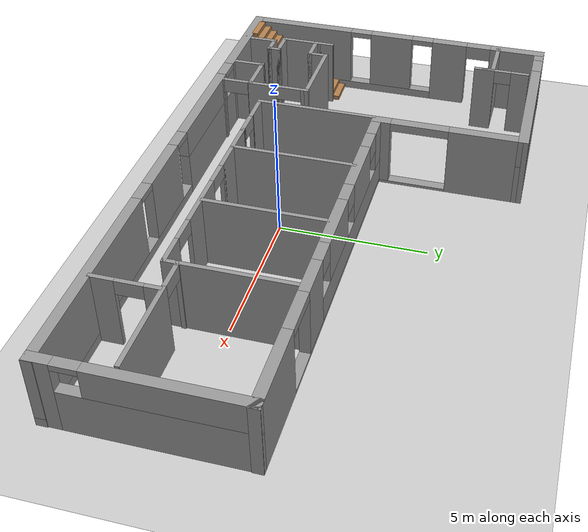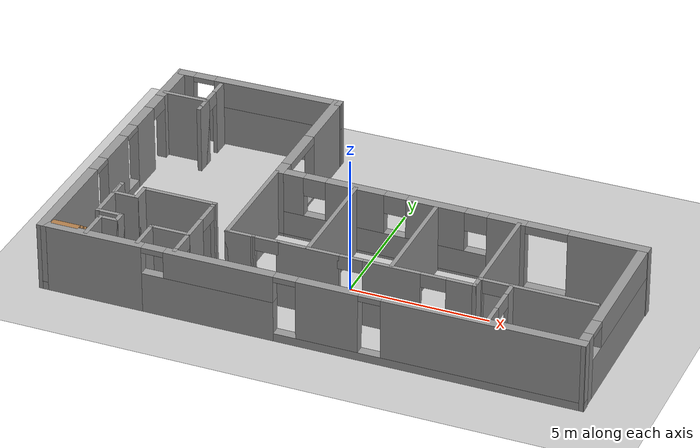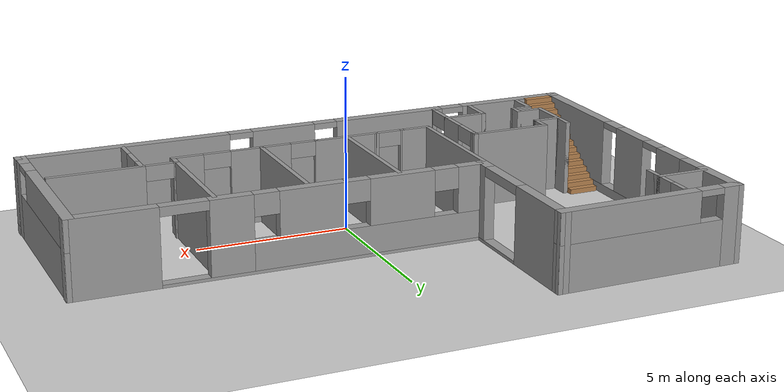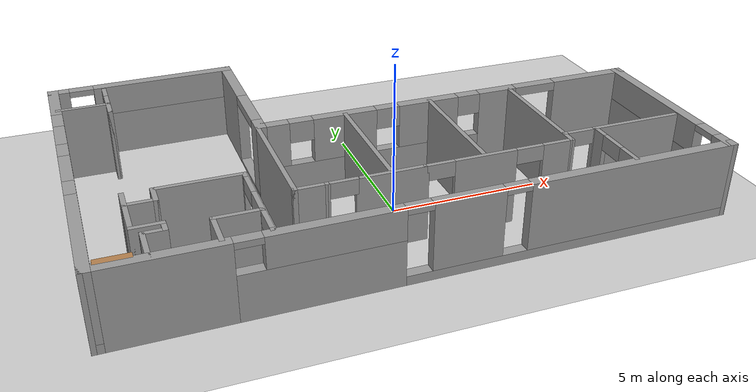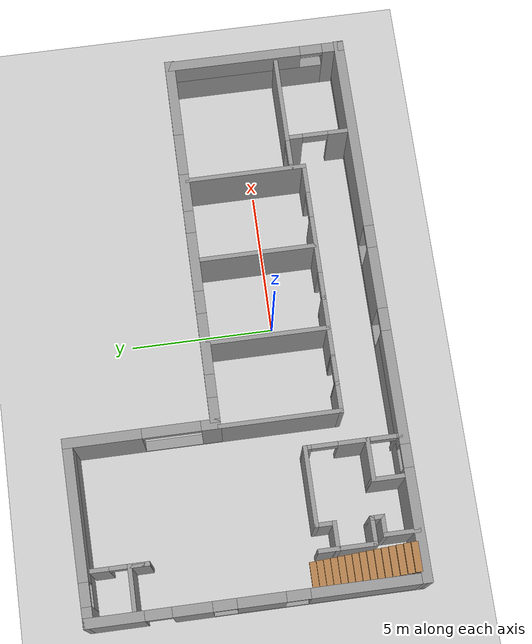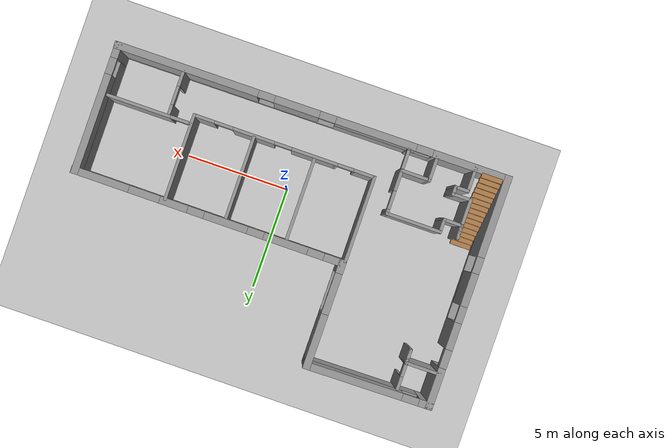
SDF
<sdf version="1.6">
 <world name="default">
  <model name="ground_plane">
   <static>1</static>
   <link name="link">
    <collision name="collision">
     <geometry><plane><normal>0 0 1</normal><size>100 100</size></plane></geometry>
     <surface><friction><ode><mu>100</mu><mu2>50</mu2></ode></friction></surface>
    </collision>
    <visual name="visual">
     <cast_shadows>0</cast_shadows>
     <geometry><plane><normal>0 0 1</normal><size>100 100</size></plane></geometry>
     <material>
      <script><uri>file://media/materials/scripts/gazebo.material</uri><name>Gazebo/Grey</name></script>
     </material>
    </visual>
   </link>
  </model>
  <model name="home">
   <pose>-0.006982 1.84803 0 0 -0 0</pose>
   <link name="Stairs_0">
    <visual name="Stairs_0_Visual_0">
     <pose>-8.81629 -2.10282 0.083333 0 -0 0</pose>
     <geometry><box><size>1 0.233333 0.166667</size></box></geometry>
     <material>
      <script><uri>file://media/materials/scripts/gazebo.material</uri><name>Gazebo/Wood</name></script>
      <ambient>1 1 1 1</ambient>
     </material>
     <meta><layer>0</layer></meta>
    </visual>
    <collision name="Stairs_0_Collision_0">
     <geometry><box><size>1 0.233333 0.166667</size></box></geometry>
     <pose>-8.81629 -2.10282 0.083333 0 -0 0</pose>
    </collision>
    <visual name="Stairs_0_Visual_1">
     <pose>-8.81629 -2.33615 0.25 0 -0 0</pose>
     <geometry><box><size>1 0.233333 0.166667</size></box></geometry>
     <material>
      <script><uri>file://media/materials/scripts/gazebo.material</uri><name>Gazebo/Wood</name></script>
      <ambient>1 1 1 1</ambient>
     </material>
     <meta><layer>0</layer></meta>
    </visual>
    <collision name="Stairs_0_Collision_1">
     <geometry><box><size>1 0.233333 0.166667</size></box></geometry>
     <pose>-8.81629 -2.33615 0.25 0 -0 0</pose>
    </collision>
    <visual name="Stairs_0_Visual_2">
     <pose>-8.81629 -2.56948 0.416667 0 -0 0</pose>
     <geometry><box><size>1 0.233333 0.166667</size></box></geometry>
     <material>
      <script><uri>file://media/materials/scripts/gazebo.material</uri><name>Gazebo/Wood</name></script>
      <ambient>1 1 1 1</ambient>
     </material>
     <meta><layer>0</layer></meta>
    </visual>
    <collision name="Stairs_0_Collision_2">
     <geometry><box><size>1 0.233333 0.166667</size></box></geometry>
     <pose>-8.81629 -2.56948 0.416667 0 -0 0</pose>
    </collision>
    <visual name="Stairs_0_Visual_3">
     <pose>-8.81629 -2.80282 0.583333 0 -0 0</pose>
     <geometry><box><size>1 0.233333 0.166667</size></box></geometry>
     <material>
      <script><uri>file://media/materials/scripts/gazebo.material</uri><name>Gazebo/Wood</name></script>
      <ambient>1 1 1 1</ambient>
     </material>
     <meta><layer>0</layer></meta>
    </visual>
    <collision name="Stairs_0_Collision_3">
     <geometry><box><size>1 0.233333 0.166667</size></box></geometry>
     <pose>-8.81629 -2.80282 0.583333 0 -0 0</pose>
    </collision>
    <visual name="Stairs_0_Visual_4">
     <pose>-8.81629 -3.03615 0.75 0 -0 0</pose>
     <geometry><box><size>1 0.233333 0.166667</size></box></geometry>
     <material>
      <script><uri>file://media/materials/scripts/gazebo.material</uri><name>Gazebo/Wood</name></script>
      <ambient>1 1 1 1</ambient>
     </material>
     <meta><layer>0</layer></meta>
    </visual>
    <collision name="Stairs_0_Collision_4">
     <geometry><box><size>1 0.233333 0.166667</size></box></geometry>
     <pose>-8.81629 -3.03615 0.75 0 -0 0</pose>
    </collision>
    <visual name="Stairs_0_Visual_5">
     <pose>-8.81629 -3.26948 0.916667 0 -0 0</pose>
     <geometry><box><size>1 0.233333 0.166667</size></box></geometry>
     <material>
      <script><uri>file://media/materials/scripts/gazebo.material</uri><name>Gazebo/Wood</name></script>
      <ambient>1 1 1 1</ambient>
     </material>
     <meta><layer>0</layer></meta>
    </visual>
    <collision name="Stairs_0_Collision_5">
     <geometry><box><size>1 0.233333 0.166667</size></box></geometry>
     <pose>-8.81629 -3.26948 0.916667 0 -0 0</pose>
    </collision>
    <visual name="Stairs_0_Visual_6">
     <pose>-8.81629 -3.50282 1.08333 0 -0 0</pose>
     <geometry><box><size>1 0.233333 0.166667</size></box></geometry>
     <material>
      <script><uri>file://media/materials/scripts/gazebo.material</uri><name>Gazebo/Wood</name></script>
      <ambient>1 1 1 1</ambient>
     </material>
     <meta><layer>0</layer></meta>
    </visual>
    <collision name="Stairs_0_Collision_6">
     <geometry><box><size>1 0.233333 0.166667</size></box></geometry>
     <pose>-8.81629 -3.50282 1.08333 0 -0 0</pose>
    </collision>
    <visual name="Stairs_0_Visual_7">
     <pose>-8.81629 -3.73615 1.25 0 -0 0</pose>
     <geometry><box><size>1 0.233333 0.166667</size></box></geometry>
     <material>
      <script><uri>file://media/materials/scripts/gazebo.material</uri><name>Gazebo/Wood</name></script>
      <ambient>1 1 1 1</ambient>
     </material>
     <meta><layer>0</layer></meta>
    </visual>
    <collision name="Stairs_0_Collision_7">
     <geometry><box><size>1 0.233333 0.166667</size></box></geometry>
     <pose>-8.81629 -3.73615 1.25 0 -0 0</pose>
    </collision>
    <visual name="Stairs_0_Visual_8">
     <pose>-8.81629 -3.96949 1.41667 0 -0 0</pose>
     <geometry><box><size>1 0.233333 0.166667</size></box></geometry>
     <material>
      <script><uri>file://media/materials/scripts/gazebo.material</uri><name>Gazebo/Wood</name></script>
      <ambient>1 1 1 1</ambient>
     </material>
     <meta><layer>0</layer></meta>
    </visual>
    <collision name="Stairs_0_Collision_8">
     <geometry><box><size>1 0.233333 0.166667</size></box></geometry>
     <pose>-8.81629 -3.96949 1.41667 0 -0 0</pose>
    </collision>
    <visual name="Stairs_0_Visual_9">
     <pose>-8.81629 -4.20282 1.58333 0 -0 0</pose>
     <geometry><box><size>1 0.233333 0.166667</size></box></geometry>
     <material>
      <script><uri>file://media/materials/scripts/gazebo.material</uri><name>Gazebo/Wood</name></script>
      <ambient>1 1 1 1</ambient>
     </material>
     <meta><layer>0</layer></meta>
    </visual>
    <collision name="Stairs_0_Collision_9">
     <geometry><box><size>1 0.233333 0.166667</size></box></geometry>
     <pose>-8.81629 -4.20282 1.58333 0 -0 0</pose>
    </collision>
    <visual name="Stairs_0_Visual_10">
     <pose>-8.81629 -4.43615 1.75 0 -0 0</pose>
     <geometry><box><size>1 0.233333 0.166667</size></box></geometry>
     <material>
      <script><uri>file://media/materials/scripts/gazebo.material</uri><name>Gazebo/Wood</name></script>
      <ambient>1 1 1 1</ambient>
     </material>
     <meta><layer>0</layer></meta>
    </visual>
    <collision name="Stairs_0_Collision_10">
     <geometry><box><size>1 0.233333 0.166667</size></box></geometry>
     <pose>-8.81629 -4.43615 1.75 0 -0 0</pose>
    </collision>
    <visual name="Stairs_0_Visual_11">
     <pose>-8.81629 -4.66948 1.91667 0 -0 0</pose>
     <geometry><box><size>1 0.233333 0.166667</size></box></geometry>
     <material>
      <script><uri>file://media/materials/scripts/gazebo.material</uri><name>Gazebo/Wood</name></script>
      <ambient>1 1 1 1</ambient>
     </material>
     <meta><layer>0</layer></meta>
    </visual>
    <collision name="Stairs_0_Collision_11">
     <geometry><box><size>1 0.233333 0.166667</size></box></geometry>
     <pose>-8.81629 -4.66948 1.91667 0 -0 0</pose>
    </collision>
    <visual name="Stairs_0_Visual_12">
     <pose>-8.81629 -4.90282 2.08333 0 -0 0</pose>
     <geometry><box><size>1 0.233333 0.166667</size></box></geometry>
     <material>
      <script><uri>file://media/materials/scripts/gazebo.material</uri><name>Gazebo/Wood</name></script>
      <ambient>1 1 1 1</ambient>
     </material>
     <meta><layer>0</layer></meta>
    </visual>
    <collision name="Stairs_0_Collision_12">
     <geometry><box><size>1 0.233333 0.166667</size></box></geometry>
     <pose>-8.81629 -4.90282 2.08333 0 -0 0</pose>
    </collision>
    <visual name="Stairs_0_Visual_13">
     <pose>-8.81629 -5.13615 2.25 0 -0 0</pose>
     <geometry><box><size>1 0.233333 0.166667</size></box></geometry>
     <material>
      <script><uri>file://media/materials/scripts/gazebo.material</uri><name>Gazebo/Wood</name></script>
      <ambient>1 1 1 1</ambient>
     </material>
     <meta><layer>0</layer></meta>
    </visual>
    <collision name="Stairs_0_Collision_13">
     <geometry><box><size>1 0.233333 0.166667</size></box></geometry>
     <pose>-8.81629 -5.13615 2.25 0 -0 0</pose>
    </collision>
    <visual name="Stairs_0_Visual_14">
     <pose>-8.81629 -5.36949 2.41667 0 -0 0</pose>
     <geometry><box><size>1 0.233333 0.166667</size></box></geometry>
     <material>
      <script><uri>file://media/materials/scripts/gazebo.material</uri><name>Gazebo/Wood</name></script>
      <ambient>1 1 1 1</ambient>
     </material>
     <meta><layer>0</layer></meta>
    </visual>
    <collision name="Stairs_0_Collision_14">
     <geometry><box><size>1 0.233333 0.166667</size></box></geometry>
     <pose>-8.81629 -5.36949 2.41667 0 -0 0</pose>
    </collision>
   </link>
   <link name="Wall_0">
    <pose>-9.53364 -0.044972 0 0 0 -1.5708</pose>
    <visual name="Wall_0_Visual_0">
     <pose>-4.71962 0 1.25 0 -0 0</pose>
     <geometry><box><size>2.01097 0.35 2.5</size></box></geometry>
     <material>
      <script><uri>file://media/materials/scripts/gazebo.material</uri><name>Gazebo/Grey</name></script>
      <ambient>0.533333 0.541176 0.521569 1</ambient>
     </material>
     <meta><layer>0</layer></meta>
    </visual>
    <collision name="Wall_0_Collision_0">
     <geometry><box><size>2.01097 0.35 2.5</size></box></geometry>
     <pose>-4.71962 0 1.25 0 -0 0</pose>
    </collision>
    <visual name="Wall_0_Visual_1">
     <pose>-2.15318 0 1.25 0 -0 0</pose>
     <geometry><box><size>1.32191 0.35 2.5</size></box></geometry>
     <material>
      <script><uri>file://media/materials/scripts/gazebo.material</uri><name>Gazebo/Grey</name></script>
      <ambient>0.533333 0.541176 0.521569 1</ambient>
     </material>
     <meta><layer>0</layer></meta>
    </visual>
    <collision name="Wall_0_Collision_1">
     <geometry><box><size>1.32191 0.35 2.5</size></box></geometry>
     <pose>-2.15318 0 1.25 0 -0 0</pose>
    </collision>
    <visual name="Wall_0_Visual_2">
     <pose>2.11644 0 0.15 0 -0 0</pose>
     <geometry><box><size>7.21733 0.35 0.3</size></box></geometry>
     <material>
      <script><uri>file://media/materials/scripts/gazebo.material</uri><name>Gazebo/Grey</name></script>
      <ambient>0.533333 0.541176 0.521569 1</ambient>
     </material>
     <meta><layer>0</layer></meta>
    </visual>
    <collision name="Wall_0_Collision_2">
     <geometry><box><size>7.21733 0.35 0.3</size></box></geometry>
     <pose>2.11644 0 0.15 0 -0 0</pose>
    </collision>
    <visual name="Wall_0_Visual_3">
     <pose>0.116089 0 1.4 0 -0 0</pose>
     <geometry><box><size>1.61663 0.35 2.2</size></box></geometry>
     <material>
      <script><uri>file://media/materials/scripts/gazebo.material</uri><name>Gazebo/Grey</name></script>
      <ambient>0.533333 0.541176 0.521569 1</ambient>
     </material>
     <meta><layer>0</layer></meta>
    </visual>
    <collision name="Wall_0_Collision_3">
     <geometry><box><size>1.61663 0.35 2.2</size></box></geometry>
     <pose>0.116089 0 1.4 0 -0 0</pose>
    </collision>
    <visual name="Wall_0_Visual_4">
     <pose>3.72475 0 1.4 0 -0 0</pose>
     <geometry><box><size>4.0007 0.35 2.2</size></box></geometry>
     <material>
      <script><uri>file://media/materials/scripts/gazebo.material</uri><name>Gazebo/Grey</name></script>
      <ambient>0.533333 0.541176 0.521569 1</ambient>
     </material>
     <meta><layer>0</layer></meta>
    </visual>
    <collision name="Wall_0_Collision_4">
     <geometry><box><size>4.0007 0.35 2.2</size></box></geometry>
     <pose>3.72475 0 1.4 0 -0 0</pose>
    </collision>
    <visual name="Wall_0_Visual_5">
     <pose>-3.26413 0 2.25 0 -0 0</pose>
     <geometry><box><size>0.9 0.35 0.5</size></box></geometry>
     <material>
      <script><uri>file://media/materials/scripts/gazebo.material</uri><name>Gazebo/Grey</name></script>
      <ambient>0.533333 0.541176 0.521569 1</ambient>
     </material>
     <meta><layer>0</layer></meta>
    </visual>
    <collision name="Wall_0_Collision_5">
     <geometry><box><size>0.9 0.35 0.5</size></box></geometry>
     <pose>-3.26413 0 2.25 0 -0 0</pose>
    </collision>
    <visual name="Wall_0_Visual_6">
     <pose>-1.09223 0 2.4 0 -0 0</pose>
     <geometry><box><size>0.8 0.35 0.2</size></box></geometry>
     <material>
      <script><uri>file://media/materials/scripts/gazebo.material</uri><name>Gazebo/Grey</name></script>
      <ambient>0.533333 0.541176 0.521569 1</ambient>
     </material>
     <meta><layer>0</layer></meta>
    </visual>
    <collision name="Wall_0_Collision_6">
     <geometry><box><size>0.8 0.35 0.2</size></box></geometry>
     <pose>-1.09223 0 2.4 0 -0 0</pose>
    </collision>
    <visual name="Wall_0_Visual_7">
     <pose>1.3244 0 2.4 0 -0 0</pose>
     <geometry><box><size>0.8 0.35 0.2</size></box></geometry>
     <material>
      <script><uri>file://media/materials/scripts/gazebo.material</uri><name>Gazebo/Grey</name></script>
      <ambient>0.533333 0.541176 0.521569 1</ambient>
     </material>
     <meta><layer>0</layer></meta>
    </visual>
    <collision name="Wall_0_Collision_7">
     <geometry><box><size>0.8 0.35 0.2</size></box></geometry>
     <pose>1.3244 0 2.4 0 -0 0</pose>
    </collision>
   </link>
   <link name="Wall_1">
    <pose>0.000972 -5.56103 0 0 -0 0.00356</pose>
    <visual name="Wall_1_Visual_0">
     <pose>-7.79255 0 1.25 0 -0 0</pose>
     <geometry><box><size>3.83426 0.35 2.5</size></box></geometry>
     <material>
      <script><uri>file://media/materials/scripts/gazebo.material</uri><name>Gazebo/Grey</name></script>
      <ambient>0.533333 0.541176 0.521569 1</ambient>
     </material>
     <meta><layer>0</layer></meta>
    </visual>
    <collision name="Wall_1_Collision_0">
     <geometry><box><size>3.83426 0.35 2.5</size></box></geometry>
     <pose>-7.79255 0 1.25 0 -0 0</pose>
    </collision>
    <visual name="Wall_1_Visual_1">
     <pose>-3.50442 0 0.75 0 -0 0</pose>
     <geometry><box><size>4.742 0.35 1.5</size></box></geometry>
     <material>
      <script><uri>file://media/materials/scripts/gazebo.material</uri><name>Gazebo/Grey</name></script>
      <ambient>0.533333 0.541176 0.521569 1</ambient>
     </material>
     <meta><layer>0</layer></meta>
    </visual>
    <collision name="Wall_1_Collision_1">
     <geometry><box><size>4.742 0.35 1.5</size></box></geometry>
     <pose>-3.50442 0 0.75 0 -0 0</pose>
    </collision>
    <visual name="Wall_1_Visual_2">
     <pose>4.28813 0 0.15 0 -0 0</pose>
     <geometry><box><size>10.8431 0.35 0.3</size></box></geometry>
     <material>
      <script><uri>file://media/materials/scripts/gazebo.material</uri><name>Gazebo/Grey</name></script>
      <ambient>0.533333 0.541176 0.521569 1</ambient>
     </material>
     <meta><layer>0</layer></meta>
    </visual>
    <collision name="Wall_1_Collision_2">
     <geometry><box><size>10.8431 0.35 0.3</size></box></geometry>
     <pose>4.28813 0 0.15 0 -0 0</pose>
    </collision>
    <visual name="Wall_1_Visual_3">
     <pose>0.765465 0 1.4 0 -0 0</pose>
     <geometry><box><size>2.19777 0.35 2.2</size></box></geometry>
     <material>
      <script><uri>file://media/materials/scripts/gazebo.material</uri><name>Gazebo/Grey</name></script>
      <ambient>0.533333 0.541176 0.521569 1</ambient>
     </material>
     <meta><layer>0</layer></meta>
    </visual>
    <collision name="Wall_1_Collision_3">
     <geometry><box><size>2.19777 0.35 2.2</size></box></geometry>
     <pose>0.765465 0 1.4 0 -0 0</pose>
    </collision>
    <visual name="Wall_1_Visual_4">
     <pose>6.18701 0 1.4 0 -0 0</pose>
     <geometry><box><size>7.04532 0.35 2.2</size></box></geometry>
     <material>
      <script><uri>file://media/materials/scripts/gazebo.material</uri><name>Gazebo/Grey</name></script>
      <ambient>0.533333 0.541176 0.521569 1</ambient>
     </material>
     <meta><layer>0</layer></meta>
    </visual>
    <collision name="Wall_1_Collision_4">
     <geometry><box><size>7.04532 0.35 2.2</size></box></geometry>
     <pose>6.18701 0 1.4 0 -0 0</pose>
    </collision>
    <visual name="Wall_1_Visual_5">
     <pose>-3.10442 0 2 0 -0 0</pose>
     <geometry><box><size>3.942 0.35 1</size></box></geometry>
     <material>
      <script><uri>file://media/materials/scripts/gazebo.material</uri><name>Gazebo/Grey</name></script>
      <ambient>0.533333 0.541176 0.521569 1</ambient>
     </material>
     <meta><layer>0</layer></meta>
    </visual>
    <collision name="Wall_1_Collision_5">
     <geometry><box><size>3.942 0.35 1</size></box></geometry>
     <pose>-3.10442 0 2 0 -0 0</pose>
    </collision>
    <visual name="Wall_1_Visual_6">
     <pose>-5.47542 0 2.4 0 -0 0</pose>
     <geometry><box><size>0.8 0.35 0.2</size></box></geometry>
     <material>
      <script><uri>file://media/materials/scripts/gazebo.material</uri><name>Gazebo/Grey</name></script>
      <ambient>0.533333 0.541176 0.521569 1</ambient>
     </material>
     <meta><layer>0</layer></meta>
    </visual>
    <collision name="Wall_1_Collision_6">
     <geometry><box><size>0.8 0.35 0.2</size></box></geometry>
     <pose>-5.47542 0 2.4 0 -0 0</pose>
    </collision>
    <visual name="Wall_1_Visual_7">
     <pose>2.26435 0 2.4 0 -0 0</pose>
     <geometry><box><size>0.8 0.35 0.2</size></box></geometry>
     <material>
      <script><uri>file://media/materials/scripts/gazebo.material</uri><name>Gazebo/Grey</name></script>
      <ambient>0.533333 0.541176 0.521569 1</ambient>
     </material>
     <meta><layer>0</layer></meta>
    </visual>
    <collision name="Wall_1_Collision_7">
     <geometry><box><size>0.8 0.35 0.2</size></box></geometry>
     <pose>2.26435 0 2.4 0 -0 0</pose>
    </collision>
    <visual name="Wall_1_Visual_8">
     <pose>-0.733419 0 2.4 0 -0 0</pose>
     <geometry><box><size>0.8 0.35 0.2</size></box></geometry>
     <material>
      <script><uri>file://media/materials/scripts/gazebo.material</uri><name>Gazebo/Grey</name></script>
      <ambient>0.533333 0.541176 0.521569 1</ambient>
     </material>
     <meta><layer>0</layer></meta>
    </visual>
    <collision name="Wall_1_Collision_8">
     <geometry><box><size>0.8 0.35 0.2</size></box></geometry>
     <pose>-0.733419 0 2.4 0 -0 0</pose>
    </collision>
   </link>
   <link name="Wall_17">
    <pose>-3.57864 3.09303 0 0 0 -1.5708</pose>
    <visual name="Wall_17_Visual_0">
     <pose>-1.33506 0 1.25 0 -0 0</pose>
     <geometry><box><size>2.68042 0.35 2.5</size></box></geometry>
     <material>
      <script><uri>file://media/materials/scripts/gazebo.material</uri><name>Gazebo/Grey</name></script>
      <ambient>0.533333 0.541176 0.521569 1</ambient>
     </material>
     <meta><layer>0</layer></meta>
    </visual>
    <collision name="Wall_17_Collision_0">
     <geometry><box><size>2.68042 0.35 2.5</size></box></geometry>
     <pose>-1.33506 0 1.25 0 -0 0</pose>
    </collision>
    <visual name="Wall_17_Visual_1">
     <pose>1.34021 0 0.05 0 -0 0</pose>
     <geometry><box><size>2.67013 0.35 0.1</size></box></geometry>
     <material>
      <script><uri>file://media/materials/scripts/gazebo.material</uri><name>Gazebo/Grey</name></script>
      <ambient>0.533333 0.541176 0.521569 1</ambient>
     </material>
     <meta><layer>0</layer></meta>
    </visual>
    <collision name="Wall_17_Collision_1">
     <geometry><box><size>2.67013 0.35 0.1</size></box></geometry>
     <pose>1.34021 0 0.05 0 -0 0</pose>
    </collision>
    <visual name="Wall_17_Visual_2">
     <pose>2.34021 0 1.3 0 -0 0</pose>
     <geometry><box><size>0.670125 0.35 2.4</size></box></geometry>
     <material>
      <script><uri>file://media/materials/scripts/gazebo.material</uri><name>Gazebo/Grey</name></script>
      <ambient>0.533333 0.541176 0.521569 1</ambient>
     </material>
     <meta><layer>0</layer></meta>
    </visual>
    <collision name="Wall_17_Collision_2">
     <geometry><box><size>0.670125 0.35 2.4</size></box></geometry>
     <pose>2.34021 0 1.3 0 -0 0</pose>
    </collision>
    <visual name="Wall_17_Visual_3">
     <pose>1.00515 0 2.35 0 -0 0</pose>
     <geometry><box><size>2 0.35 0.3</size></box></geometry>
     <material>
      <script><uri>file://media/materials/scripts/gazebo.material</uri><name>Gazebo/Grey</name></script>
      <ambient>0.533333 0.541176 0.521569 1</ambient>
     </material>
     <meta><layer>0</layer></meta>
    </visual>
    <collision name="Wall_17_Collision_3">
     <geometry><box><size>2 0.35 0.3</size></box></geometry>
     <pose>1.00515 0 2.35 0 -0 0</pose>
    </collision>
   </link>
   <link name="Wall_2">
    <pose>9.51547 -2.47709 0 0 -0 1.5708</pose>
    <visual name="Wall_2_Visual_0">
     <pose>-2.83404 0 1.25 0 -0 0</pose>
     <geometry><box><size>0.781917 0.35 2.5</size></box></geometry>
     <material>
      <script><uri>file://media/materials/scripts/gazebo.material</uri><name>Gazebo/Grey</name></script>
      <ambient>0.533333 0.541176 0.521569 1</ambient>
     </material>
     <meta><layer>0</layer></meta>
    </visual>
    <collision name="Wall_2_Collision_0">
     <geometry><box><size>0.781917 0.35 2.5</size></box></geometry>
     <pose>-2.83404 0 1.25 0 -0 0</pose>
    </collision>
    <visual name="Wall_2_Visual_1">
     <pose>0.390958 0 0.75 0 -0 0</pose>
     <geometry><box><size>5.66808 0.35 1.5</size></box></geometry>
     <material>
      <script><uri>file://media/materials/scripts/gazebo.material</uri><name>Gazebo/Grey</name></script>
      <ambient>0.533333 0.541176 0.521569 1</ambient>
     </material>
     <meta><layer>0</layer></meta>
    </visual>
    <collision name="Wall_2_Collision_1">
     <geometry><box><size>5.66808 0.35 1.5</size></box></geometry>
     <pose>0.390958 0 0.75 0 -0 0</pose>
    </collision>
    <visual name="Wall_2_Visual_2">
     <pose>0.790958 0 2 0 -0 0</pose>
     <geometry><box><size>4.86808 0.35 1</size></box></geometry>
     <material>
      <script><uri>file://media/materials/scripts/gazebo.material</uri><name>Gazebo/Grey</name></script>
      <ambient>0.533333 0.541176 0.521569 1</ambient>
     </material>
     <meta><layer>0</layer></meta>
    </visual>
    <collision name="Wall_2_Collision_2">
     <geometry><box><size>4.86808 0.35 1</size></box></geometry>
     <pose>0.790958 0 2 0 -0 0</pose>
    </collision>
    <visual name="Wall_2_Visual_3">
     <pose>-2.04308 0 2.4 0 -0 0</pose>
     <geometry><box><size>0.8 0.35 0.2</size></box></geometry>
     <material>
      <script><uri>file://media/materials/scripts/gazebo.material</uri><name>Gazebo/Grey</name></script>
      <ambient>0.533333 0.541176 0.521569 1</ambient>
     </material>
     <meta><layer>0</layer></meta>
    </visual>
    <collision name="Wall_2_Collision_3">
     <geometry><box><size>0.8 0.35 0.2</size></box></geometry>
     <pose>-2.04308 0 2.4 0 -0 0</pose>
    </collision>
   </link>
   <link name="Wall_24">
    <collision name="Wall_24_Collision">
     <geometry><box><size>4.25 0.15 2.5</size></box></geometry>
     <pose>0 0 1.25 0 -0 0</pose>
    </collision>
    <visual name="Wall_24_Visual">
     <pose>0 0 1.25 0 -0 0</pose>
     <geometry><box><size>4.25 0.15 2.5</size></box></geometry>
     <material>
      <script><uri>file://media/materials/scripts/gazebo.material</uri><name>Gazebo/Grey</name></script>
      <ambient>1 1 1 1</ambient>
     </material>
     <meta><layer>0</layer></meta>
    </visual>
    <pose>-3.67864 -1.59397 0 0 -0 1.5708</pose>
   </link>
   <link name="Wall_26">
    <collision name="Wall_26_Collision">
     <geometry><box><size>1.1 0.15 2.5</size></box></geometry>
     <pose>0 0 1.25 0 -0 0</pose>
    </collision>
    <visual name="Wall_26_Visual">
     <pose>0 0 1.25 0 -0 0</pose>
     <geometry><box><size>1.1 0.15 2.5</size></box></geometry>
     <material>
      <script><uri>file://media/materials/scripts/gazebo.material</uri><name>Gazebo/Grey</name></script>
      <ambient>1 1 1 1</ambient>
     </material>
     <meta><layer>0</layer></meta>
    </visual>
    <pose>-3.20364 -3.64397 0 0 -0 0</pose>
   </link>
   <link name="Wall_3">
    <pose>3.09047 0.582971 0 0 -0 3.14003</pose>
    <visual name="Wall_3_Visual_0">
     <pose>-5.20519 0 1.25 0 -0 0</pose>
     <geometry><box><size>2.82987 0.35 2.5</size></box></geometry>
     <material>
      <script><uri>file://media/materials/scripts/gazebo.material</uri><name>Gazebo/Grey</name></script>
      <ambient>0.533333 0.541176 0.521569 1</ambient>
     </material>
     <meta><layer>0</layer></meta>
    </visual>
    <collision name="Wall_3_Collision_0">
     <geometry><box><size>2.82987 0.35 2.5</size></box></geometry>
     <pose>-5.20519 0 1.25 0 -0 0</pose>
    </collision>
    <visual name="Wall_3_Visual_1">
     <pose>1.41494 0 0.05 0 -0 0</pose>
     <geometry><box><size>10.4104 0.35 0.1</size></box></geometry>
     <material>
      <script><uri>file://media/materials/scripts/gazebo.material</uri><name>Gazebo/Grey</name></script>
      <ambient>0.533333 0.541176 0.521569 1</ambient>
     </material>
     <meta><layer>0</layer></meta>
    </visual>
    <collision name="Wall_3_Collision_1">
     <geometry><box><size>10.4104 0.35 0.1</size></box></geometry>
     <pose>1.41494 0 0.05 0 -0 0</pose>
    </collision>
    <visual name="Wall_3_Visual_2">
     <pose>-1.60539 0 1.3 0 -0 0</pose>
     <geometry><box><size>1.36971 0.35 2.4</size></box></geometry>
     <material>
      <script><uri>file://media/materials/scripts/gazebo.material</uri><name>Gazebo/Grey</name></script>
      <ambient>0.533333 0.541176 0.521569 1</ambient>
     </material>
     <meta><layer>0</layer></meta>
    </visual>
    <collision name="Wall_3_Collision_2">
     <geometry><box><size>1.36971 0.35 2.4</size></box></geometry>
     <pose>-1.60539 0 1.3 0 -0 0</pose>
    </collision>
    <visual name="Wall_3_Visual_3">
     <pose>2.84979 0 0.55 0 -0 0</pose>
     <geometry><box><size>7.54066 0.35 0.9</size></box></geometry>
     <material>
      <script><uri>file://media/materials/scripts/gazebo.material</uri><name>Gazebo/Grey</name></script>
      <ambient>0.533333 0.541176 0.521569 1</ambient>
     </material>
     <meta><layer>0</layer></meta>
    </visual>
    <collision name="Wall_3_Collision_3">
     <geometry><box><size>7.54066 0.35 0.9</size></box></geometry>
     <pose>2.84979 0 0.55 0 -0 0</pose>
    </collision>
    <visual name="Wall_3_Visual_4">
     <pose>0.940109 0 1.75 0 -0 0</pose>
     <geometry><box><size>2.12129 0.35 1.5</size></box></geometry>
     <material>
      <script><uri>file://media/materials/scripts/gazebo.material</uri><name>Gazebo/Grey</name></script>
      <ambient>0.533333 0.541176 0.521569 1</ambient>
     </material>
     <meta><layer>0</layer></meta>
    </visual>
    <collision name="Wall_3_Collision_4">
     <geometry><box><size>2.12129 0.35 1.5</size></box></geometry>
     <pose>0.940109 0 1.75 0 -0 0</pose>
    </collision>
    <visual name="Wall_3_Visual_5">
     <pose>3.87689 0 1.75 0 -0 0</pose>
     <geometry><box><size>2.15226 0.35 1.5</size></box></geometry>
     <material>
      <script><uri>file://media/materials/scripts/gazebo.material</uri><name>Gazebo/Grey</name></script>
      <ambient>0.533333 0.541176 0.521569 1</ambient>
     </material>
     <meta><layer>0</layer></meta>
    </visual>
    <collision name="Wall_3_Collision_5">
     <geometry><box><size>2.15226 0.35 1.5</size></box></geometry>
     <pose>3.87689 0 1.75 0 -0 0</pose>
    </collision>
    <visual name="Wall_3_Visual_6">
     <pose>6.18657 0 1.75 0 -0 0</pose>
     <geometry><box><size>0.867103 0.35 1.5</size></box></geometry>
     <material>
      <script><uri>file://media/materials/scripts/gazebo.material</uri><name>Gazebo/Grey</name></script>
      <ambient>0.533333 0.541176 0.521569 1</ambient>
     </material>
     <meta><layer>0</layer></meta>
    </visual>
    <collision name="Wall_3_Collision_6">
     <geometry><box><size>0.867103 0.35 1.5</size></box></geometry>
     <pose>6.18657 0 1.75 0 -0 0</pose>
    </collision>
    <visual name="Wall_3_Visual_7">
     <pose>-0.520537 0 2.15 0 -0 0</pose>
     <geometry><box><size>0.8 0.35 0.7</size></box></geometry>
     <material>
      <script><uri>file://media/materials/scripts/gazebo.material</uri><name>Gazebo/Grey</name></script>
      <ambient>0.533333 0.541176 0.521569 1</ambient>
     </material>
     <meta><layer>0</layer></meta>
    </visual>
    <collision name="Wall_3_Collision_7">
     <geometry><box><size>0.8 0.35 0.7</size></box></geometry>
     <pose>-0.520537 0 2.15 0 -0 0</pose>
    </collision>
    <visual name="Wall_3_Visual_8">
     <pose>2.40076 0 2.15 0 -0 0</pose>
     <geometry><box><size>0.8 0.35 0.7</size></box></geometry>
     <material>
      <script><uri>file://media/materials/scripts/gazebo.material</uri><name>Gazebo/Grey</name></script>
      <ambient>0.533333 0.541176 0.521569 1</ambient>
     </material>
     <meta><layer>0</layer></meta>
    </visual>
    <collision name="Wall_3_Collision_8">
     <geometry><box><size>0.8 0.35 0.7</size></box></geometry>
     <pose>2.40076 0 2.15 0 -0 0</pose>
    </collision>
    <visual name="Wall_3_Visual_9">
     <pose>5.35302 0 2.15 0 -0 0</pose>
     <geometry><box><size>0.8 0.35 0.7</size></box></geometry>
     <material>
      <script><uri>file://media/materials/scripts/gazebo.material</uri><name>Gazebo/Grey</name></script>
      <ambient>0.533333 0.541176 0.521569 1</ambient>
     </material>
     <meta><layer>0</layer></meta>
    </visual>
    <collision name="Wall_3_Collision_9">
     <geometry><box><size>0.8 0.35 0.7</size></box></geometry>
     <pose>5.35302 0 2.15 0 -0 0</pose>
    </collision>
    <visual name="Wall_3_Visual_10">
     <pose>-3.04025 0 2.35 0 -0 0</pose>
     <geometry><box><size>1.5 0.35 0.3</size></box></geometry>
     <material>
      <script><uri>file://media/materials/scripts/gazebo.material</uri><name>Gazebo/Grey</name></script>
      <ambient>0.533333 0.541176 0.521569 1</ambient>
     </material>
     <meta><layer>0</layer></meta>
    </visual>
    <collision name="Wall_3_Collision_10">
     <geometry><box><size>1.5 0.35 0.3</size></box></geometry>
     <pose>-3.04025 0 2.35 0 -0 0</pose>
    </collision>
   </link>
   <link name="Wall_30">
    <collision name="Wall_30_Collision">
     <geometry><box><size>2.25 0.15 2.5</size></box></geometry>
     <pose>0 0 1.25 0 -0 0</pose>
    </collision>
    <visual name="Wall_30_Visual">
     <pose>0 0 1.25 0 -0 0</pose>
     <geometry><box><size>2.25 0.15 2.5</size></box></geometry>
     <material>
      <script><uri>file://media/materials/scripts/gazebo.material</uri><name>Gazebo/Grey</name></script>
      <ambient>1 1 1 1</ambient>
     </material>
     <meta><layer>0</layer></meta>
    </visual>
    <pose>-0.756595 -3.64068 0 0 -0 0</pose>
   </link>
   <link name="Wall_32">
    <pose>-2.26762 -3.64233 0 0 -0 0.003569</pose>
    <visual name="Wall_32_Visual_0">
     <pose>-0.470675 0 1.25 0 -0 0</pose>
     <geometry><box><size>0.130703 0.15 2.5</size></box></geometry>
     <material>
      <script><uri>file://media/materials/scripts/gazebo.material</uri><name>Gazebo/Grey</name></script>
      <ambient>1 1 1 1</ambient>
     </material>
     <meta><layer>0</layer></meta>
    </visual>
    <collision name="Wall_32_Collision_0">
     <geometry><box><size>0.130703 0.15 2.5</size></box></geometry>
     <pose>-0.470675 0 1.25 0 -0 0</pose>
    </collision>
    <visual name="Wall_32_Visual_1">
     <pose>0.511319 0 1.25 0 -0 0</pose>
     <geometry><box><size>0.049415 0.15 2.5</size></box></geometry>
     <material>
      <script><uri>file://media/materials/scripts/gazebo.material</uri><name>Gazebo/Grey</name></script>
      <ambient>1 1 1 1</ambient>
     </material>
     <meta><layer>0</layer></meta>
    </visual>
    <collision name="Wall_32_Collision_1">
     <geometry><box><size>0.049415 0.15 2.5</size></box></geometry>
     <pose>0.511319 0 1.25 0 -0 0</pose>
    </collision>
    <visual name="Wall_32_Visual_2">
     <pose>0.040644 0 2.25 0 -0 0</pose>
     <geometry><box><size>0.891935 0.15 0.5</size></box></geometry>
     <material>
      <script><uri>file://media/materials/scripts/gazebo.material</uri><name>Gazebo/Grey</name></script>
      <ambient>1 1 1 1</ambient>
     </material>
     <meta><layer>0</layer></meta>
    </visual>
    <collision name="Wall_32_Collision_2">
     <geometry><box><size>0.891935 0.15 0.5</size></box></geometry>
     <pose>0.040644 0 2.25 0 -0 0</pose>
    </collision>
   </link>
   <link name="Wall_36">
    <collision name="Wall_36_Collision">
     <geometry><box><size>4.25 0.15 2.5</size></box></geometry>
     <pose>0 0 1.25 0 -0 0</pose>
    </collision>
    <visual name="Wall_36_Visual">
     <pose>0 0 1.25 0 -0 0</pose>
     <geometry><box><size>4.25 0.15 2.5</size></box></geometry>
     <material>
      <script><uri>file://media/materials/scripts/gazebo.material</uri><name>Gazebo/Grey</name></script>
      <ambient>1 1 1 1</ambient>
     </material>
     <meta><layer>0</layer></meta>
    </visual>
    <pose>-0.77097 -1.56098 0 0 -0 1.5708</pose>
   </link>
   <link name="Wall_38">
    <pose>2.71841 -3.64068 0 0 -0 0</pose>
    <visual name="Wall_38_Visual_0">
     <pose>-2.45469 0 1.25 0 -0 0</pose>
     <geometry><box><size>0.090625 0.15 2.5</size></box></geometry>
     <material>
      <script><uri>file://media/materials/scripts/gazebo.material</uri><name>Gazebo/Grey</name></script>
      <ambient>1 1 1 1</ambient>
     </material>
     <meta><layer>0</layer></meta>
    </visual>
    <collision name="Wall_38_Collision_0">
     <geometry><box><size>0.090625 0.15 2.5</size></box></geometry>
     <pose>-2.45469 0 1.25 0 -0 0</pose>
    </collision>
    <visual name="Wall_38_Visual_1">
     <pose>-0.489375 0 1.25 0 -0 0</pose>
     <geometry><box><size>2.04 0.15 2.5</size></box></geometry>
     <material>
      <script><uri>file://media/materials/scripts/gazebo.material</uri><name>Gazebo/Grey</name></script>
      <ambient>1 1 1 1</ambient>
     </material>
     <meta><layer>0</layer></meta>
    </visual>
    <collision name="Wall_38_Collision_1">
     <geometry><box><size>2.04 0.15 2.5</size></box></geometry>
     <pose>-0.489375 0 1.25 0 -0 0</pose>
    </collision>
    <visual name="Wall_38_Visual_2">
     <pose>1.96531 0 1.25 0 -0 0</pose>
     <geometry><box><size>1.06937 0.15 2.5</size></box></geometry>
     <material>
      <script><uri>file://media/materials/scripts/gazebo.material</uri><name>Gazebo/Grey</name></script>
      <ambient>1 1 1 1</ambient>
     </material>
     <meta><layer>0</layer></meta>
    </visual>
    <collision name="Wall_38_Collision_2">
     <geometry><box><size>1.06937 0.15 2.5</size></box></geometry>
     <pose>1.96531 0 1.25 0 -0 0</pose>
    </collision>
    <visual name="Wall_38_Visual_3">
     <pose>-1.95938 0 2.25 0 -0 0</pose>
     <geometry><box><size>0.9 0.15 0.5</size></box></geometry>
     <material>
      <script><uri>file://media/materials/scripts/gazebo.material</uri><name>Gazebo/Grey</name></script>
      <ambient>1 1 1 1</ambient>
     </material>
     <meta><layer>0</layer></meta>
    </visual>
    <collision name="Wall_38_Collision_3">
     <geometry><box><size>0.9 0.15 0.5</size></box></geometry>
     <pose>-1.95938 0 2.25 0 -0 0</pose>
    </collision>
    <visual name="Wall_38_Visual_4">
     <pose>0.980625 0 2.25 0 -0 0</pose>
     <geometry><box><size>0.9 0.15 0.5</size></box></geometry>
     <material>
      <script><uri>file://media/materials/scripts/gazebo.material</uri><name>Gazebo/Grey</name></script>
      <ambient>1 1 1 1</ambient>
     </material>
     <meta><layer>0</layer></meta>
    </visual>
    <collision name="Wall_38_Collision_4">
     <geometry><box><size>0.9 0.15 0.5</size></box></geometry>
     <pose>0.980625 0 2.25 0 -0 0</pose>
    </collision>
   </link>
   <link name="Wall_39">
    <collision name="Wall_39_Collision">
     <geometry><box><size>4.25 0.15 2.5</size></box></geometry>
     <pose>0 0 1.25 0 -0 0</pose>
    </collision>
    <visual name="Wall_39_Visual">
     <pose>0 0 1.25 0 -0 0</pose>
     <geometry><box><size>4.25 0.15 2.5</size></box></geometry>
     <material>
      <script><uri>file://media/materials/scripts/gazebo.material</uri><name>Gazebo/Grey</name></script>
      <ambient>1 1 1 1</ambient>
     </material>
     <meta><layer>0</layer></meta>
    </visual>
    <pose>5.1434 -1.59068 0 0 -0 1.5708</pose>
   </link>
   <link name="Wall_41">
    <collision name="Wall_41_Collision">
     <geometry><box><size>4.25 0.15 2.5</size></box></geometry>
     <pose>0 0 1.25 0 -0 0</pose>
    </collision>
    <visual name="Wall_41_Visual">
     <pose>0 0 1.25 0 -0 0</pose>
     <geometry><box><size>4.25 0.15 2.5</size></box></geometry>
     <material>
      <script><uri>file://media/materials/scripts/gazebo.material</uri><name>Gazebo/Grey</name></script>
      <ambient>1 1 1 1</ambient>
     </material>
     <meta><layer>0</layer></meta>
    </visual>
    <pose>2.19903 -1.51098 0 0 -0 1.5708</pose>
   </link>
   <link name="Wall_43">
    <pose>6.27143 -4.34323 0 0 -0 1.5708</pose>
    <visual name="Wall_43_Visual_0">
     <pose>-0.71964 0 1.25 0 -0 0</pose>
     <geometry><box><size>0.81072 0.15 2.5</size></box></geometry>
     <material>
      <script><uri>file://media/materials/scripts/gazebo.material</uri><name>Gazebo/Grey</name></script>
      <ambient>1 1 1 1</ambient>
     </material>
     <meta><layer>0</layer></meta>
    </visual>
    <collision name="Wall_43_Collision_0">
     <geometry><box><size>0.81072 0.15 2.5</size></box></geometry>
     <pose>-0.71964 0 1.25 0 -0 0</pose>
    </collision>
    <visual name="Wall_43_Visual_1">
     <pose>0.85536 0 1.25 0 -0 0</pose>
     <geometry><box><size>0.53928 0.15 2.5</size></box></geometry>
     <material>
      <script><uri>file://media/materials/scripts/gazebo.material</uri><name>Gazebo/Grey</name></script>
      <ambient>1 1 1 1</ambient>
     </material>
     <meta><layer>0</layer></meta>
    </visual>
    <collision name="Wall_43_Collision_1">
     <geometry><box><size>0.53928 0.15 2.5</size></box></geometry>
     <pose>0.85536 0 1.25 0 -0 0</pose>
    </collision>
    <visual name="Wall_43_Visual_2">
     <pose>0.13572 0 2.25 0 -0 0</pose>
     <geometry><box><size>0.9 0.15 0.5</size></box></geometry>
     <material>
      <script><uri>file://media/materials/scripts/gazebo.material</uri><name>Gazebo/Grey</name></script>
      <ambient>1 1 1 1</ambient>
     </material>
     <meta><layer>0</layer></meta>
    </visual>
    <collision name="Wall_43_Collision_2">
     <geometry><box><size>0.9 0.15 0.5</size></box></geometry>
     <pose>0.13572 0 2.25 0 -0 0</pose>
    </collision>
   </link>
   <link name="Wall_45">
    <pose>7.18081 -3.20697 0 0 -0 0</pose>
    <visual name="Wall_45_Visual_0">
     <pose>-2.00937 0 1.25 0 -0 0</pose>
     <geometry><box><size>0.181264 0.15 2.5</size></box></geometry>
     <material>
      <script><uri>file://media/materials/scripts/gazebo.material</uri><name>Gazebo/Grey</name></script>
      <ambient>1 1 1 1</ambient>
     </material>
     <meta><layer>0</layer></meta>
    </visual>
    <collision name="Wall_45_Collision_0">
     <geometry><box><size>0.181264 0.15 2.5</size></box></geometry>
     <pose>-2.00937 0 1.25 0 -0 0</pose>
    </collision>
    <visual name="Wall_45_Visual_1">
     <pose>0.540632 0 1.25 0 -0 0</pose>
     <geometry><box><size>3.11874 0.15 2.5</size></box></geometry>
     <material>
      <script><uri>file://media/materials/scripts/gazebo.material</uri><name>Gazebo/Grey</name></script>
      <ambient>1 1 1 1</ambient>
     </material>
     <meta><layer>0</layer></meta>
    </visual>
    <collision name="Wall_45_Collision_1">
     <geometry><box><size>3.11874 0.15 2.5</size></box></geometry>
     <pose>0.540632 0 1.25 0 -0 0</pose>
    </collision>
    <visual name="Wall_45_Visual_2">
     <pose>-1.46874 0 2.25 0 -0 0</pose>
     <geometry><box><size>0.9 0.15 0.5</size></box></geometry>
     <material>
      <script><uri>file://media/materials/scripts/gazebo.material</uri><name>Gazebo/Grey</name></script>
      <ambient>1 1 1 1</ambient>
     </material>
     <meta><layer>0</layer></meta>
    </visual>
    <collision name="Wall_45_Collision_2">
     <geometry><box><size>0.9 0.15 0.5</size></box></geometry>
     <pose>-1.46874 0 2.25 0 -0 0</pose>
    </collision>
   </link>
   <link name="Wall_47">
    <collision name="Wall_47_Collision">
     <geometry><box><size>1.25 0.15 2.5</size></box></geometry>
     <pose>0 0 1.25 0 -0 0</pose>
    </collision>
    <visual name="Wall_47_Visual">
     <pose>0 0 1.25 0 -0 0</pose>
     <geometry><box><size>1.25 0.15 2.5</size></box></geometry>
     <material>
      <script><uri>file://media/materials/scripts/gazebo.material</uri><name>Gazebo/Grey</name></script>
      <ambient>1 1 1 1</ambient>
     </material>
     <meta><layer>0</layer></meta>
    </visual>
    <pose>-6.12057 -4.91029 0 0 -0 1.5708</pose>
   </link>
   <link name="Wall_48">
    <collision name="Wall_48_Collision">
     <geometry><box><size>1.5 0.15 2.5</size></box></geometry>
     <pose>0 0 1.25 0 -0 0</pose>
    </collision>
    <visual name="Wall_48_Visual">
     <pose>0 0 1.25 0 -0 0</pose>
     <geometry><box><size>1.5 0.15 2.5</size></box></geometry>
     <material>
      <script><uri>file://media/materials/scripts/gazebo.material</uri><name>Gazebo/Grey</name></script>
      <ambient>1 1 1 1</ambient>
     </material>
     <meta><layer>0</layer></meta>
    </visual>
    <pose>-5.44557 -4.36029 0 0 -0 0</pose>
   </link>
   <link name="Wall_49">
    <pose>-4.77057 -3.31029 0 0 -0 1.5708</pose>
    <visual name="Wall_49_Visual_0">
     <pose>-0.591147 0 1.25 0 -0 0</pose>
     <geometry><box><size>1.06771 0.15 2.5</size></box></geometry>
     <material>
      <script><uri>file://media/materials/scripts/gazebo.material</uri><name>Gazebo/Grey</name></script>
      <ambient>1 1 1 1</ambient>
     </material>
     <meta><layer>0</layer></meta>
    </visual>
    <collision name="Wall_49_Collision_0">
     <geometry><box><size>1.06771 0.15 2.5</size></box></geometry>
     <pose>-0.591147 0 1.25 0 -0 0</pose>
    </collision>
    <visual name="Wall_49_Visual_1">
     <pose>0.983853 0 1.25 0 -0 0</pose>
     <geometry><box><size>0.282294 0.15 2.5</size></box></geometry>
     <material>
      <script><uri>file://media/materials/scripts/gazebo.material</uri><name>Gazebo/Grey</name></script>
      <ambient>1 1 1 1</ambient>
     </material>
     <meta><layer>0</layer></meta>
    </visual>
    <collision name="Wall_49_Collision_1">
     <geometry><box><size>0.282294 0.15 2.5</size></box></geometry>
     <pose>0.983853 0 1.25 0 -0 0</pose>
    </collision>
    <visual name="Wall_49_Visual_2">
     <pose>0.392706 0 2.25 0 -0 0</pose>
     <geometry><box><size>0.9 0.15 0.5</size></box></geometry>
     <material>
      <script><uri>file://media/materials/scripts/gazebo.material</uri><name>Gazebo/Grey</name></script>
      <ambient>1 1 1 1</ambient>
     </material>
     <meta><layer>0</layer></meta>
    </visual>
    <collision name="Wall_49_Collision_2">
     <geometry><box><size>0.9 0.15 0.5</size></box></geometry>
     <pose>0.392706 0 2.25 0 -0 0</pose>
    </collision>
   </link>
   <link name="Wall_50">
    <collision name="Wall_50_Collision">
     <geometry><box><size>2.75 0.15 2.5</size></box></geometry>
     <pose>0 0 1.25 0 -0 0</pose>
    </collision>
    <visual name="Wall_50_Visual">
     <pose>0 0 1.25 0 -0 0</pose>
     <geometry><box><size>2.75 0.15 2.5</size></box></geometry>
     <material>
      <script><uri>file://media/materials/scripts/gazebo.material</uri><name>Gazebo/Grey</name></script>
      <ambient>1 1 1 1</ambient>
     </material>
     <meta><layer>0</layer></meta>
    </visual>
    <pose>-6.07057 -2.26029 0 0 -0 3.14159</pose>
   </link>
   <link name="Wall_51">
    <collision name="Wall_51_Collision">
     <geometry><box><size>0.75 0.15 2.5</size></box></geometry>
     <pose>0 0 1.25 0 -0 0</pose>
    </collision>
    <visual name="Wall_51_Visual">
     <pose>0 0 1.25 0 -0 0</pose>
     <geometry><box><size>0.75 0.15 2.5</size></box></geometry>
     <material>
      <script><uri>file://media/materials/scripts/gazebo.material</uri><name>Gazebo/Grey</name></script>
      <ambient>1 1 1 1</ambient>
     </material>
     <meta><layer>0</layer></meta>
    </visual>
    <pose>-7.37057 -2.56029 0 0 0 -1.5708</pose>
   </link>
   <link name="Wall_52">
    <collision name="Wall_52_Collision">
     <geometry><box><size>1 0.15 2.5</size></box></geometry>
     <pose>0 0 1.25 0 -0 0</pose>
    </collision>
    <visual name="Wall_52_Visual">
     <pose>0 0 1.25 0 -0 0</pose>
     <geometry><box><size>1 0.15 2.5</size></box></geometry>
     <material>
      <script><uri>file://media/materials/scripts/gazebo.material</uri><name>Gazebo/Grey</name></script>
      <ambient>1 1 1 1</ambient>
     </material>
     <meta><layer>0</layer></meta>
    </visual>
    <pose>-7.79557 -2.86029 0 0 -0 3.14159</pose>
   </link>
   <link name="Wall_53">
    <collision name="Wall_53_Collision">
     <geometry><box><size>0.75 0.15 2.5</size></box></geometry>
     <pose>0 0 1.25 0 -0 0</pose>
    </collision>
    <visual name="Wall_53_Visual">
     <pose>0 0 1.25 0 -0 0</pose>
     <geometry><box><size>0.75 0.15 2.5</size></box></geometry>
     <material>
      <script><uri>file://media/materials/scripts/gazebo.material</uri><name>Gazebo/Grey</name></script>
      <ambient>1 1 1 1</ambient>
     </material>
     <meta><layer>0</layer></meta>
    </visual>
    <pose>-8.22057 -2.56029 0 0 -0 1.5708</pose>
   </link>
   <link name="Wall_54">
    <collision name="Wall_54_Collision">
     <geometry><box><size>2 0.15 2.5</size></box></geometry>
     <pose>0 0 1.25 0 -0 0</pose>
    </collision>
    <visual name="Wall_54_Visual">
     <pose>0 0 1.25 0 -0 0</pose>
     <geometry><box><size>2 0.15 2.5</size></box></geometry>
     <material>
      <script><uri>file://media/materials/scripts/gazebo.material</uri><name>Gazebo/Grey</name></script>
      <ambient>1 1 1 1</ambient>
     </material>
     <meta><layer>0</layer></meta>
    </visual>
    <pose>-8.22057 -3.18529 0 0 0 -1.5708</pose>
   </link>
   <link name="Wall_56">
    <collision name="Wall_56_Collision">
     <geometry><box><size>1 0.15 2.5</size></box></geometry>
     <pose>0 0 1.25 0 -0 0</pose>
    </collision>
    <visual name="Wall_56_Visual">
     <pose>0 0 1.25 0 -0 0</pose>
     <geometry><box><size>1 0.15 2.5</size></box></geometry>
     <material>
      <script><uri>file://media/materials/scripts/gazebo.material</uri><name>Gazebo/Grey</name></script>
      <ambient>1 1 1 1</ambient>
     </material>
     <meta><layer>0</layer></meta>
    </visual>
    <pose>-7.79557 -4.11029 0 0 -0 0</pose>
   </link>
   <link name="Wall_57">
    <collision name="Wall_57_Collision">
     <geometry><box><size>0.5 0.15 2.5</size></box></geometry>
     <pose>0 0 1.25 0 -0 0</pose>
    </collision>
    <visual name="Wall_57_Visual">
     <pose>0 0 1.25 0 -0 0</pose>
     <geometry><box><size>0.5 0.15 2.5</size></box></geometry>
     <material>
      <script><uri>file://media/materials/scripts/gazebo.material</uri><name>Gazebo/Grey</name></script>
      <ambient>1 1 1 1</ambient>
     </material>
     <meta><layer>0</layer></meta>
    </visual>
    <pose>-7.37057 -4.28529 0 0 0 -1.5708</pose>
   </link>
   <link name="Wall_58">
    <collision name="Wall_58_Collision">
     <geometry><box><size>0.75 0.15 2.5</size></box></geometry>
     <pose>0 0 1.25 0 -0 0</pose>
    </collision>
    <visual name="Wall_58_Visual">
     <pose>0 0 1.25 0 -0 0</pose>
     <geometry><box><size>0.75 0.15 2.5</size></box></geometry>
     <material>
      <script><uri>file://media/materials/scripts/gazebo.material</uri><name>Gazebo/Grey</name></script>
      <ambient>1 1 1 1</ambient>
     </material>
     <meta><layer>0</layer></meta>
    </visual>
    <pose>-7.67057 -4.46029 0 0 -0 3.14159</pose>
   </link>
   <link name="Wall_60">
    <collision name="Wall_60_Collision">
     <geometry><box><size>1.25 0.15 2.5</size></box></geometry>
     <pose>0 0 1.25 0 -0 0</pose>
    </collision>
    <visual name="Wall_60_Visual">
     <pose>0 0 1.25 0 -0 0</pose>
     <geometry><box><size>1.25 0.15 2.5</size></box></geometry>
     <material>
      <script><uri>file://media/materials/scripts/gazebo.material</uri><name>Gazebo/Grey</name></script>
      <ambient>1 1 1 1</ambient>
     </material>
     <meta><layer>0</layer></meta>
    </visual>
    <pose>-7.97057 -5.01029 0 0 0 -1.5708</pose>
   </link>
   <link name="Wall_62">
    <pose>-4.77057 -4.91029 0 0 0 -1.5708</pose>
    <visual name="Wall_62_Visual_0">
     <pose>-0.54326 0 1.25 0 -0 0</pose>
     <geometry><box><size>0.163481 0.15 2.5</size></box></geometry>
     <material>
      <script><uri>file://media/materials/scripts/gazebo.material</uri><name>Gazebo/Grey</name></script>
      <ambient>1 1 1 1</ambient>
     </material>
     <meta><layer>0</layer></meta>
    </visual>
    <collision name="Wall_62_Collision_0">
     <geometry><box><size>0.163481 0.15 2.5</size></box></geometry>
     <pose>-0.54326 0 1.25 0 -0 0</pose>
    </collision>
    <visual name="Wall_62_Visual_1">
     <pose>0.53174 0 1.25 0 -0 0</pose>
     <geometry><box><size>0.186519 0.15 2.5</size></box></geometry>
     <material>
      <script><uri>file://media/materials/scripts/gazebo.material</uri><name>Gazebo/Grey</name></script>
      <ambient>1 1 1 1</ambient>
     </material>
     <meta><layer>0</layer></meta>
    </visual>
    <collision name="Wall_62_Collision_1">
     <geometry><box><size>0.186519 0.15 2.5</size></box></geometry>
     <pose>0.53174 0 1.25 0 -0 0</pose>
    </collision>
    <visual name="Wall_62_Visual_2">
     <pose>-0.011519 0 2.25 0 -0 0</pose>
     <geometry><box><size>0.9 0.15 0.5</size></box></geometry>
     <material>
      <script><uri>file://media/materials/scripts/gazebo.material</uri><name>Gazebo/Grey</name></script>
      <ambient>1 1 1 1</ambient>
     </material>
     <meta><layer>0</layer></meta>
    </visual>
    <collision name="Wall_62_Collision_2">
     <geometry><box><size>0.9 0.15 0.5</size></box></geometry>
     <pose>-0.011519 0 2.25 0 -0 0</pose>
    </collision>
   </link>
   <link name="Wall_64">
    <collision name="Wall_64_Collision">
     <geometry><box><size>1.75 0.15 2.5</size></box></geometry>
     <pose>0 0 1.25 0 -0 0</pose>
    </collision>
    <visual name="Wall_64_Visual">
     <pose>0 0 1.25 0 -0 0</pose>
     <geometry><box><size>1.75 0.15 2.5</size></box></geometry>
     <material>
      <script><uri>file://media/materials/scripts/gazebo.material</uri><name>Gazebo/Grey</name></script>
      <ambient>1 1 1 1</ambient>
     </material>
     <meta><layer>0</layer></meta>
    </visual>
    <pose>-8.68152 3.97321 0 0 -0 0</pose>
   </link>
   <link name="Wall_65">
    <collision name="Wall_65_Collision">
     <geometry><box><size>0.75 0.15 2.5</size></box></geometry>
     <pose>0 0 1.25 0 -0 0</pose>
    </collision>
    <visual name="Wall_65_Visual">
     <pose>0 0 1.25 0 -0 0</pose>
     <geometry><box><size>0.75 0.15 2.5</size></box></geometry>
     <material>
      <script><uri>file://media/materials/scripts/gazebo.material</uri><name>Gazebo/Grey</name></script>
      <ambient>1 1 1 1</ambient>
     </material>
     <meta><layer>0</layer></meta>
    </visual>
    <pose>-7.88152 3.67321 0 0 0 -1.5708</pose>
   </link>
   <link name="Wall_66">
    <pose>-7.88152 4.29821 0 0 -0 1.5708</pose>
    <visual name="Wall_66_Visual_0">
     <pose>-0.624645 0 1.25 0 -0 0</pose>
     <geometry><box><size>0.75071 0.15 2.5</size></box></geometry>
     <material>
      <script><uri>file://media/materials/scripts/gazebo.material</uri><name>Gazebo/Grey</name></script>
      <ambient>1 1 1 1</ambient>
     </material>
     <meta><layer>0</layer></meta>
    </visual>
    <collision name="Wall_66_Collision_0">
     <geometry><box><size>0.75071 0.15 2.5</size></box></geometry>
     <pose>-0.624645 0 1.25 0 -0 0</pose>
    </collision>
    <visual name="Wall_66_Visual_1">
     <pose>0.675355 0 1.25 0 -0 0</pose>
     <geometry><box><size>0.64929 0.15 2.5</size></box></geometry>
     <material>
      <script><uri>file://media/materials/scripts/gazebo.material</uri><name>Gazebo/Grey</name></script>
      <ambient>1 1 1 1</ambient>
     </material>
     <meta><layer>0</layer></meta>
    </visual>
    <collision name="Wall_66_Collision_1">
     <geometry><box><size>0.64929 0.15 2.5</size></box></geometry>
     <pose>0.675355 0 1.25 0 -0 0</pose>
    </collision>
    <visual name="Wall_66_Visual_2">
     <pose>0.05071 0 2.25 0 -0 0</pose>
     <geometry><box><size>0.6 0.15 0.5</size></box></geometry>
     <material>
      <script><uri>file://media/materials/scripts/gazebo.material</uri><name>Gazebo/Grey</name></script>
      <ambient>1 1 1 1</ambient>
     </material>
     <meta><layer>0</layer></meta>
    </visual>
    <collision name="Wall_66_Collision_2">
     <geometry><box><size>0.6 0.15 0.5</size></box></geometry>
     <pose>0.05071 0 2.25 0 -0 0</pose>
    </collision>
   </link>
   <link name="Wall_7">
    <pose>-6.55614 5.54903 0 0 -0 0.014776</pose>
    <visual name="Wall_7_Visual_0">
     <pose>-2.8032 0 1.25 0 -0 0</pose>
     <geometry><box><size>0.699243 0.35 2.5</size></box></geometry>
     <material>
      <script><uri>file://media/materials/scripts/gazebo.material</uri><name>Gazebo/Grey</name></script>
      <ambient>0.533333 0.541176 0.521569 1</ambient>
     </material>
     <meta><layer>0</layer></meta>
    </visual>
    <collision name="Wall_7_Collision_0">
     <geometry><box><size>0.699243 0.35 2.5</size></box></geometry>
     <pose>-2.8032 0 1.25 0 -0 0</pose>
    </collision>
    <visual name="Wall_7_Visual_1">
     <pose>0.349621 0 0.75 0 -0 0</pose>
     <geometry><box><size>5.60641 0.35 1.5</size></box></geometry>
     <material>
      <script><uri>file://media/materials/scripts/gazebo.material</uri><name>Gazebo/Grey</name></script>
      <ambient>0.533333 0.541176 0.521569 1</ambient>
     </material>
     <meta><layer>0</layer></meta>
    </visual>
    <collision name="Wall_7_Collision_1">
     <geometry><box><size>5.60641 0.35 1.5</size></box></geometry>
     <pose>0.349621 0 0.75 0 -0 0</pose>
    </collision>
    <visual name="Wall_7_Visual_2">
     <pose>0.749621 0 2 0 -0 0</pose>
     <geometry><box><size>4.80641 0.35 1</size></box></geometry>
     <material>
      <script><uri>file://media/materials/scripts/gazebo.material</uri><name>Gazebo/Grey</name></script>
      <ambient>0.533333 0.541176 0.521569 1</ambient>
     </material>
     <meta><layer>0</layer></meta>
    </visual>
    <collision name="Wall_7_Collision_2">
     <geometry><box><size>4.80641 0.35 1</size></box></geometry>
     <pose>0.749621 0 2 0 -0 0</pose>
    </collision>
    <visual name="Wall_7_Visual_3">
     <pose>-2.05358 0 2.4 0 -0 0</pose>
     <geometry><box><size>0.8 0.35 0.2</size></box></geometry>
     <material>
      <script><uri>file://media/materials/scripts/gazebo.material</uri><name>Gazebo/Grey</name></script>
      <ambient>0.533333 0.541176 0.521569 1</ambient>
     </material>
     <meta><layer>0</layer></meta>
    </visual>
    <collision name="Wall_7_Collision_3">
     <geometry><box><size>0.8 0.35 0.2</size></box></geometry>
     <pose>-2.05358 0 2.4 0 -0 0</pose>
    </collision>
   </link>
   <static>1</static>
  </model>
 </world>
</sdf>
